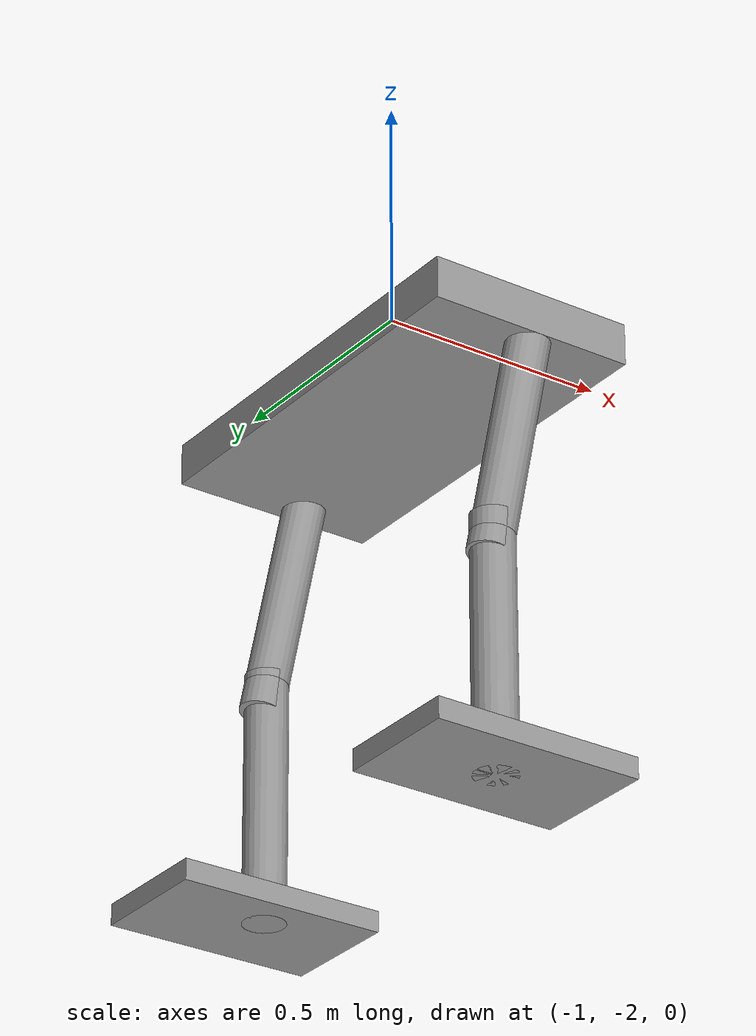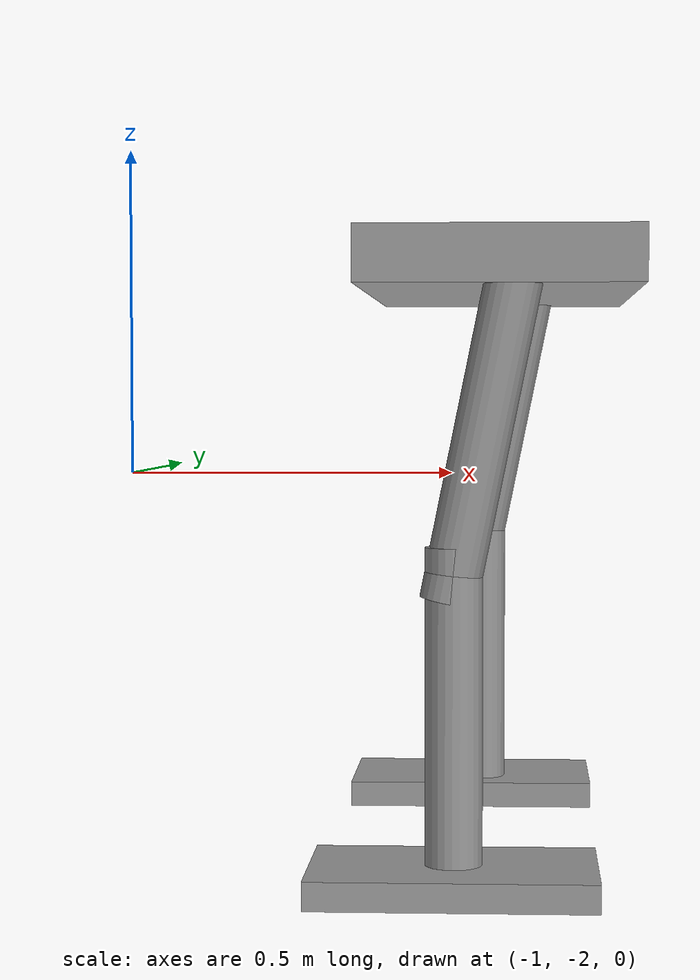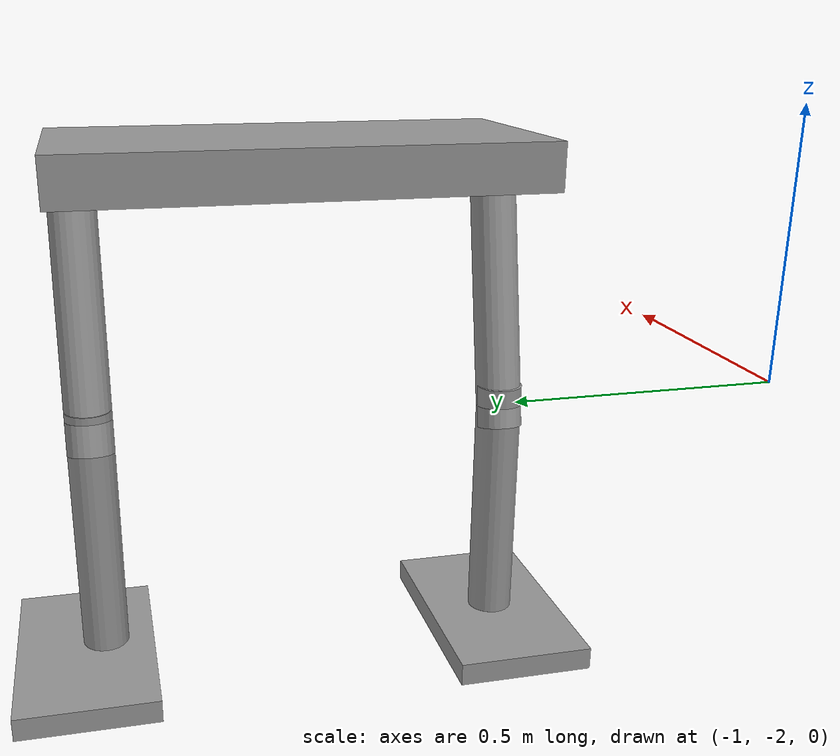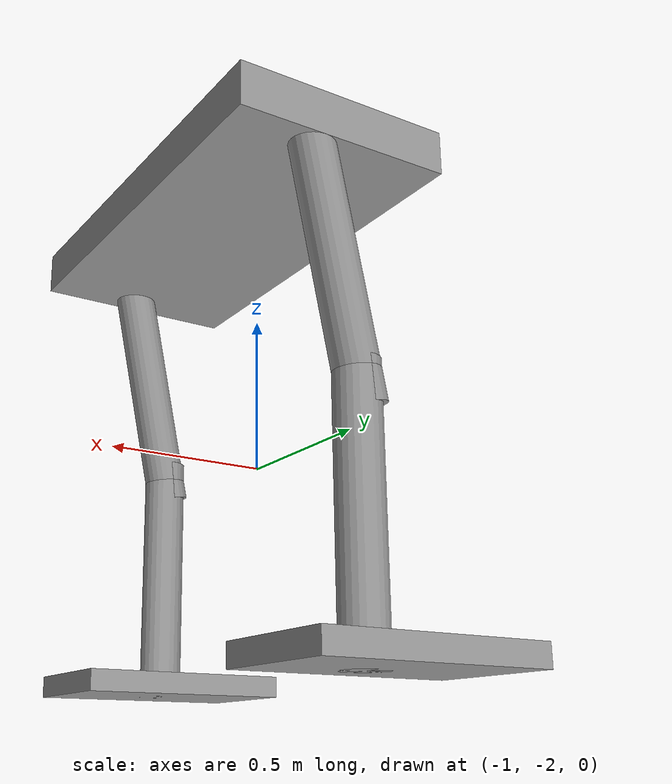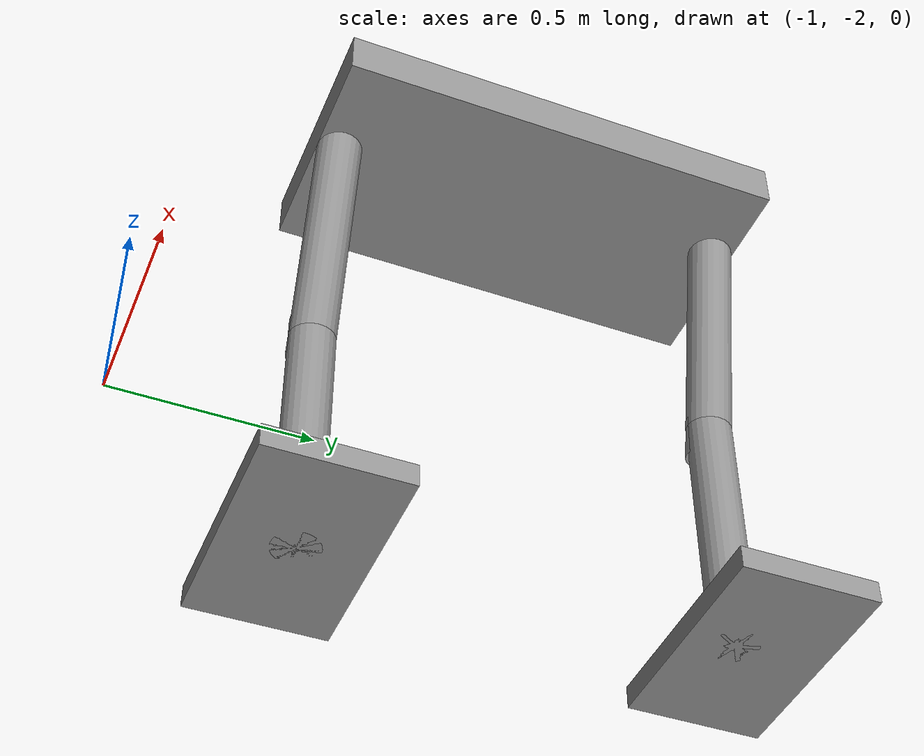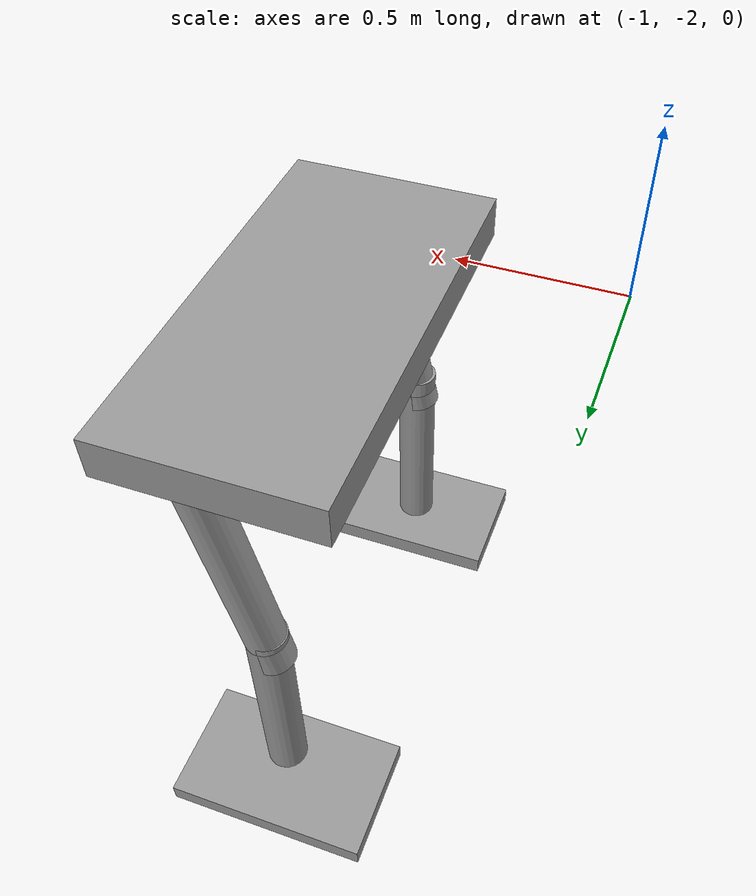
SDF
<?xml version='1.0'?>
<sdf version='1.6'>
  <model name='humanoid_robot'>
    <link name='link_0'>
      <pose frame=''>-0.429033 -1.21064 0.361062 0 -0 0</pose>
      <inertial>
        <mass>1</mass>
        <inertia>
          <ixx>0.166667</ixx>
          <ixy>0</ixy>
          <ixz>0</ixz>
          <iyy>0.166667</iyy>
          <iyz>0</iyz>
          <izz>0.166667</izz>
        </inertia>
        <pose frame=''>0 0 0 0 -0 0</pose>
      </inertial>
      <gravity>1</gravity>
      <self_collide>0</self_collide>
      <kinematic>0</kinematic>
      <visual name='visual'>
        <pose frame=''>0 0 0 0 -0 0</pose>
        <geometry>
          <box>
            <size>0.5 1 0.1</size>
          </box>
        </geometry>
        <material>
          <lighting>1</lighting>
          <script>
            <uri>file://media/materials/scripts/gazebo.material</uri>
            <name>Gazebo/Grey</name>
          </script>
          <shader type='pixel'>
            <normal_map>__default__</normal_map>
          </shader>
          <ambient>0.3 0.3 0.3 1</ambient>
          <diffuse>0.7 0.7 0.7 1</diffuse>
          <specular>0.01 0.01 0.01 1</specular>
          <emissive>0 0 0 1</emissive>
        </material>
        <transparency>0</transparency>
        <cast_shadows>1</cast_shadows>
      </visual>
      <collision name='collision'>
        <laser_retro>0</laser_retro>
        <max_contacts>10</max_contacts>
        <pose frame=''>0 0 0 0 -0 0</pose>
        <geometry>
          <box>
            <size>0.5 1 0.1</size>
          </box>
        </geometry>
        <surface>
          <friction>
            <ode>
              <mu>1</mu>
              <mu2>1</mu2>
              <fdir1>0 0 0</fdir1>
              <slip1>0</slip1>
              <slip2>0</slip2>
            </ode>
            <torsional>
              <coefficient>1</coefficient>
              <patch_radius>0</patch_radius>
              <surface_radius>0</surface_radius>
              <use_patch_radius>1</use_patch_radius>
              <ode>
                <slip>0</slip>
              </ode>
            </torsional>
          </friction>
          <bounce>
            <restitution_coefficient>0</restitution_coefficient>
            <threshold>1e+06</threshold>
          </bounce>
          <contact>
            <collide_without_contact>0</collide_without_contact>
            <collide_without_contact_bitmask>1</collide_without_contact_bitmask>
            <collide_bitmask>1</collide_bitmask>
            <ode>
              <soft_cfm>0</soft_cfm>
              <soft_erp>0.2</soft_erp>
              <kp>1e+13</kp>
              <kd>1</kd>
              <max_vel>0.01</max_vel>
              <min_depth>0</min_depth>
            </ode>
            <bullet>
              <split_impulse>1</split_impulse>
              <split_impulse_penetration_threshold>-0.01</split_impulse_penetration_threshold>
              <soft_cfm>0</soft_cfm>
              <soft_erp>0.2</soft_erp>
              <kp>1e+13</kp>
              <kd>1</kd>
            </bullet>
          </contact>
        </surface>
      </collision>
    </link>
    <link name='link_1'>
      <pose frame=''>-0.494032 -0.715644 -0.71443 0 -0 0</pose>
      <inertial>
        <mass>1</mass>
        <inertia>
          <ixx>0.166667</ixx>
          <ixy>0</ixy>
          <ixz>0</ixz>
          <iyy>0.166667</iyy>
          <iyz>0</iyz>
          <izz>0.166667</izz>
        </inertia>
        <pose frame=''>0 0 0 0 -0 0</pose>
      </inertial>
      <gravity>1</gravity>
      <self_collide>0</self_collide>
      <kinematic>0</kinematic>
      <visual name='visual'>
        <pose frame=''>0 0 0 0 -0 0</pose>
        <geometry>
          <box>
            <size>0.5 0.3 0.05</size>
          </box>
        </geometry>
        <material>
          <lighting>1</lighting>
          <script>
            <uri>file://media/materials/scripts/gazebo.material</uri>
            <name>Gazebo/Grey</name>
          </script>
          <shader type='pixel'>
            <normal_map>__default__</normal_map>
          </shader>
          <ambient>0.3 0.3 0.3 1</ambient>
          <diffuse>0.7 0.7 0.7 1</diffuse>
          <specular>0.01 0.01 0.01 1</specular>
          <emissive>0 0 0 1</emissive>
        </material>
        <transparency>0</transparency>
        <cast_shadows>1</cast_shadows>
      </visual>
      <collision name='collision'>
        <laser_retro>0</laser_retro>
        <max_contacts>10</max_contacts>
        <pose frame=''>0 0 0 0 -0 0</pose>
        <geometry>
          <box>
            <size>0.5 0.3 0.05</size>
          </box>
        </geometry>
        <surface>
          <friction>
            <ode>
              <mu>1</mu>
              <mu2>1</mu2>
              <fdir1>0 0 0</fdir1>
              <slip1>0</slip1>
              <slip2>0</slip2>
            </ode>
            <torsional>
              <coefficient>1</coefficient>
              <patch_radius>0</patch_radius>
              <surface_radius>0</surface_radius>
              <use_patch_radius>1</use_patch_radius>
              <ode>
                <slip>0</slip>
              </ode>
            </torsional>
          </friction>
          <bounce>
            <restitution_coefficient>0</restitution_coefficient>
            <threshold>1e+06</threshold>
          </bounce>
          <contact>
            <collide_without_contact>0</collide_without_contact>
            <collide_without_contact_bitmask>1</collide_without_contact_bitmask>
            <collide_bitmask>1</collide_bitmask>
            <ode>
              <soft_cfm>0</soft_cfm>
              <soft_erp>0.2</soft_erp>
              <kp>1e+13</kp>
              <kd>1</kd>
              <max_vel>0.01</max_vel>
              <min_depth>0</min_depth>
            </ode>
            <bullet>
              <split_impulse>1</split_impulse>
              <split_impulse_penetration_threshold>-0.01</split_impulse_penetration_threshold>
              <soft_cfm>0</soft_cfm>
              <soft_erp>0.2</soft_erp>
              <kp>1e+13</kp>
              <kd>1</kd>
            </bullet>
          </contact>
        </surface>
      </collision>
    </link>
    <link name='link_1_clone'>
      <pose frame=''>-0.50671 -1.66064 -0.71443 0 -0 0</pose>
      <inertial>
        <mass>1</mass>
        <inertia>
          <ixx>0.166667</ixx>
          <ixy>0</ixy>
          <ixz>0</ixz>
          <iyy>0.166667</iyy>
          <iyz>0</iyz>
          <izz>0.166667</izz>
        </inertia>
        <pose frame=''>0 0 0 0 -0 0</pose>
      </inertial>
      <self_collide>0</self_collide>
      <kinematic>0</kinematic>
      <visual name='visual'>
        <pose frame=''>0 0 0 0 -0 0</pose>
        <geometry>
          <box>
            <size>0.5 0.3 0.05</size>
          </box>
        </geometry>
        <material>
          <lighting>1</lighting>
          <script>
            <uri>file://media/materials/scripts/gazebo.material</uri>
            <name>Gazebo/Grey</name>
          </script>
          <shader type='pixel'>
            <normal_map>__default__</normal_map>
          </shader>
          <ambient>0.3 0.3 0.3 1</ambient>
          <diffuse>0.7 0.7 0.7 1</diffuse>
          <specular>0.01 0.01 0.01 1</specular>
          <emissive>0 0 0 1</emissive>
        </material>
        <transparency>0</transparency>
        <cast_shadows>1</cast_shadows>
      </visual>
      <collision name='collision'>
        <laser_retro>0</laser_retro>
        <max_contacts>10</max_contacts>
        <pose frame=''>0 0 0 0 -0 0</pose>
        <geometry>
          <box>
            <size>0.5 0.3 0.05</size>
          </box>
        </geometry>
        <surface>
          <friction>
            <ode>
              <mu>1</mu>
              <mu2>1</mu2>
              <fdir1>0 0 0</fdir1>
              <slip1>0</slip1>
              <slip2>0</slip2>
            </ode>
            <torsional>
              <coefficient>1</coefficient>
              <patch_radius>0</patch_radius>
              <surface_radius>0</surface_radius>
              <use_patch_radius>1</use_patch_radius>
              <ode>
                <slip>0</slip>
              </ode>
            </torsional>
          </friction>
          <bounce>
            <restitution_coefficient>0</restitution_coefficient>
            <threshold>1e+06</threshold>
          </bounce>
          <contact>
            <collide_without_contact>0</collide_without_contact>
            <collide_without_contact_bitmask>1</collide_without_contact_bitmask>
            <collide_bitmask>1</collide_bitmask>
            <ode>
              <soft_cfm>0</soft_cfm>
              <soft_erp>0.2</soft_erp>
              <kp>1e+13</kp>
              <kd>1</kd>
              <max_vel>0.01</max_vel>
              <min_depth>0</min_depth>
            </ode>
            <bullet>
              <split_impulse>1</split_impulse>
              <split_impulse_penetration_threshold>-0.01</split_impulse_penetration_threshold>
              <soft_cfm>0</soft_cfm>
              <soft_erp>0.2</soft_erp>
              <kp>1e+13</kp>
              <kd>1</kd>
            </bullet>
          </contact>
        </surface>
      </collision>
    </link>
    <link name='link_2'>
      <pose frame=''>-0.474033 -0.760644 -0.43943 0 -0 0</pose>
      <inertial>
        <mass>1</mass>
        <inertia>
          <ixx>0.145833</ixx>
          <ixy>0</ixy>
          <ixz>0</ixz>
          <iyy>0.145833</iyy>
          <iyz>0</iyz>
          <izz>0.125</izz>
        </inertia>
        <pose frame=''>0 0 0 0 -0 0</pose>
      </inertial>
      <gravity>1</gravity>
      <self_collide>0</self_collide>
      <kinematic>0</kinematic>
      <visual name='visual'>
        <pose frame=''>0 0 0 0 -0 0</pose>
        <geometry>
          <cylinder>
            <radius>0.05</radius>
            <length>0.6</length>
          </cylinder>
        </geometry>
        <material>
          <lighting>1</lighting>
          <script>
            <uri>file://media/materials/scripts/gazebo.material</uri>
            <name>Gazebo/Grey</name>
          </script>
          <shader type='pixel'>
            <normal_map>__default__</normal_map>
          </shader>
          <ambient>0.3 0.3 0.3 1</ambient>
          <diffuse>0.7 0.7 0.7 1</diffuse>
          <specular>0.01 0.01 0.01 1</specular>
          <emissive>0 0 0 1</emissive>
        </material>
        <transparency>0</transparency>
        <cast_shadows>1</cast_shadows>
      </visual>
      <collision name='collision'>
        <laser_retro>0</laser_retro>
        <max_contacts>10</max_contacts>
        <pose frame=''>0 0 0 0 -0 0</pose>
        <geometry>
          <cylinder>
            <radius>0.05</radius>
            <length>0.6</length>
          </cylinder>
        </geometry>
        <surface>
          <friction>
            <ode>
              <mu>1</mu>
              <mu2>1</mu2>
              <fdir1>0 0 0</fdir1>
              <slip1>0</slip1>
              <slip2>0</slip2>
            </ode>
            <torsional>
              <coefficient>1</coefficient>
              <patch_radius>0</patch_radius>
              <surface_radius>0</surface_radius>
              <use_patch_radius>1</use_patch_radius>
              <ode>
                <slip>0</slip>
              </ode>
            </torsional>
          </friction>
          <bounce>
            <restitution_coefficient>0</restitution_coefficient>
            <threshold>1e+06</threshold>
          </bounce>
          <contact>
            <collide_without_contact>0</collide_without_contact>
            <collide_without_contact_bitmask>1</collide_without_contact_bitmask>
            <collide_bitmask>1</collide_bitmask>
            <ode>
              <soft_cfm>0</soft_cfm>
              <soft_erp>0.2</soft_erp>
              <kp>1e+13</kp>
              <kd>1</kd>
              <max_vel>0.01</max_vel>
              <min_depth>0</min_depth>
            </ode>
            <bullet>
              <split_impulse>1</split_impulse>
              <split_impulse_penetration_threshold>-0.01</split_impulse_penetration_threshold>
              <soft_cfm>0</soft_cfm>
              <soft_erp>0.2</soft_erp>
              <kp>1e+13</kp>
              <kd>1</kd>
            </bullet>
          </contact>
        </surface>
      </collision>
    </link>
    <link name='link_2_clone'>
      <pose frame=''>-0.429033 -0.760644 0.061062 0 0.2 0</pose>
      <inertial>
        <mass>1</mass>
        <inertia>
          <ixx>0.145833</ixx>
          <ixy>0</ixy>
          <ixz>0</ixz>
          <iyy>0.145833</iyy>
          <iyz>0</iyz>
          <izz>0.125</izz>
        </inertia>
        <pose frame=''>0 0 0 0 -0 0</pose>
      </inertial>
      <self_collide>0</self_collide>
      <kinematic>0</kinematic>
      <visual name='visual'>
        <pose frame=''>0 0 0 0 -0 0</pose>
        <geometry>
          <cylinder>
            <radius>0.05</radius>
            <length>0.6</length>
          </cylinder>
        </geometry>
        <material>
          <lighting>1</lighting>
          <script>
            <uri>file://media/materials/scripts/gazebo.material</uri>
            <name>Gazebo/Grey</name>
          </script>
          <shader type='pixel'>
            <normal_map>__default__</normal_map>
          </shader>
          <ambient>0.3 0.3 0.3 1</ambient>
          <diffuse>0.7 0.7 0.7 1</diffuse>
          <specular>0.01 0.01 0.01 1</specular>
          <emissive>0 0 0 1</emissive>
        </material>
        <transparency>0</transparency>
        <cast_shadows>1</cast_shadows>
      </visual>
      <collision name='collision'>
        <laser_retro>0</laser_retro>
        <max_contacts>10</max_contacts>
        <pose frame=''>0 0 0 0 -0 0</pose>
        <geometry>
          <cylinder>
            <radius>0.05</radius>
            <length>0.6</length>
          </cylinder>
        </geometry>
        <surface>
          <friction>
            <ode>
              <mu>1</mu>
              <mu2>1</mu2>
              <fdir1>0 0 0</fdir1>
              <slip1>0</slip1>
              <slip2>0</slip2>
            </ode>
            <torsional>
              <coefficient>1</coefficient>
              <patch_radius>0</patch_radius>
              <surface_radius>0</surface_radius>
              <use_patch_radius>1</use_patch_radius>
              <ode>
                <slip>0</slip>
              </ode>
            </torsional>
          </friction>
          <bounce>
            <restitution_coefficient>0</restitution_coefficient>
            <threshold>1e+06</threshold>
          </bounce>
          <contact>
            <collide_without_contact>0</collide_without_contact>
            <collide_without_contact_bitmask>1</collide_without_contact_bitmask>
            <collide_bitmask>1</collide_bitmask>
            <ode>
              <soft_cfm>0</soft_cfm>
              <soft_erp>0.2</soft_erp>
              <kp>1e+13</kp>
              <kd>1</kd>
              <max_vel>0.01</max_vel>
              <min_depth>0</min_depth>
            </ode>
            <bullet>
              <split_impulse>1</split_impulse>
              <split_impulse_penetration_threshold>-0.01</split_impulse_penetration_threshold>
              <soft_cfm>0</soft_cfm>
              <soft_erp>0.2</soft_erp>
              <kp>1e+13</kp>
              <kd>1</kd>
            </bullet>
          </contact>
        </surface>
      </collision>
    </link>
    <link name='link_2_clone_0'>
      <pose frame=''>-0.50671 -1.66064 -0.43943 0 -0 0</pose>
      <inertial>
        <mass>1</mass>
        <inertia>
          <ixx>0.145833</ixx>
          <ixy>0</ixy>
          <ixz>0</ixz>
          <iyy>0.145833</iyy>
          <iyz>0</iyz>
          <izz>0.125</izz>
        </inertia>
        <pose frame=''>0 0 0 0 -0 0</pose>
      </inertial>
      <self_collide>0</self_collide>
      <kinematic>0</kinematic>
      <visual name='visual'>
        <pose frame=''>0 0 0 0 -0 0</pose>
        <geometry>
          <cylinder>
            <radius>0.05</radius>
            <length>0.6</length>
          </cylinder>
        </geometry>
        <material>
          <lighting>1</lighting>
          <script>
            <uri>file://media/materials/scripts/gazebo.material</uri>
            <name>Gazebo/Grey</name>
          </script>
          <shader type='pixel'>
            <normal_map>__default__</normal_map>
          </shader>
          <ambient>0.3 0.3 0.3 1</ambient>
          <diffuse>0.7 0.7 0.7 1</diffuse>
          <specular>0.01 0.01 0.01 1</specular>
          <emissive>0 0 0 1</emissive>
        </material>
        <transparency>0</transparency>
        <cast_shadows>1</cast_shadows>
      </visual>
      <collision name='collision'>
        <laser_retro>0</laser_retro>
        <max_contacts>10</max_contacts>
        <pose frame=''>0 0 0 0 -0 0</pose>
        <geometry>
          <cylinder>
            <radius>0.05</radius>
            <length>0.6</length>
          </cylinder>
        </geometry>
        <surface>
          <friction>
            <ode>
              <mu>1</mu>
              <mu2>1</mu2>
              <fdir1>0 0 0</fdir1>
              <slip1>0</slip1>
              <slip2>0</slip2>
            </ode>
            <torsional>
              <coefficient>1</coefficient>
              <patch_radius>0</patch_radius>
              <surface_radius>0</surface_radius>
              <use_patch_radius>1</use_patch_radius>
              <ode>
                <slip>0</slip>
              </ode>
            </torsional>
          </friction>
          <bounce>
            <restitution_coefficient>0</restitution_coefficient>
            <threshold>1e+06</threshold>
          </bounce>
          <contact>
            <collide_without_contact>0</collide_without_contact>
            <collide_without_contact_bitmask>1</collide_without_contact_bitmask>
            <collide_bitmask>1</collide_bitmask>
            <ode>
              <soft_cfm>0</soft_cfm>
              <soft_erp>0.2</soft_erp>
              <kp>1e+13</kp>
              <kd>1</kd>
              <max_vel>0.01</max_vel>
              <min_depth>0</min_depth>
            </ode>
            <bullet>
              <split_impulse>1</split_impulse>
              <split_impulse_penetration_threshold>-0.01</split_impulse_penetration_threshold>
              <soft_cfm>0</soft_cfm>
              <soft_erp>0.2</soft_erp>
              <kp>1e+13</kp>
              <kd>1</kd>
            </bullet>
          </contact>
        </surface>
      </collision>
    </link>
    <link name='link_2_clone_0_clone'>
      <pose frame=''>-0.456711 -1.66064 0.06057 0 0.2 0</pose>
      <inertial>
        <mass>1</mass>
        <inertia>
          <ixx>0.145833</ixx>
          <ixy>0</ixy>
          <ixz>0</ixz>
          <iyy>0.145833</iyy>
          <iyz>0</iyz>
          <izz>0.125</izz>
        </inertia>
        <pose frame=''>0 0 0 0 -0 0</pose>
      </inertial>
      <self_collide>0</self_collide>
      <kinematic>0</kinematic>
      <visual name='visual'>
        <pose frame=''>0 0 0 0 -0 0</pose>
        <geometry>
          <cylinder>
            <radius>0.05</radius>
            <length>0.6</length>
          </cylinder>
        </geometry>
        <material>
          <lighting>1</lighting>
          <script>
            <uri>file://media/materials/scripts/gazebo.material</uri>
            <name>Gazebo/Grey</name>
          </script>
          <shader type='pixel'>
            <normal_map>__default__</normal_map>
          </shader>
          <ambient>0.3 0.3 0.3 1</ambient>
          <diffuse>0.7 0.7 0.7 1</diffuse>
          <specular>0.01 0.01 0.01 1</specular>
          <emissive>0 0 0 1</emissive>
        </material>
        <transparency>0</transparency>
        <cast_shadows>1</cast_shadows>
      </visual>
      <collision name='collision'>
        <laser_retro>0</laser_retro>
        <max_contacts>10</max_contacts>
        <pose frame=''>0 0 0 0 -0 0</pose>
        <geometry>
          <cylinder>
            <radius>0.05</radius>
            <length>0.6</length>
          </cylinder>
        </geometry>
        <surface>
          <friction>
            <ode>
              <mu>1</mu>
              <mu2>1</mu2>
              <fdir1>0 0 0</fdir1>
              <slip1>0</slip1>
              <slip2>0</slip2>
            </ode>
            <torsional>
              <coefficient>1</coefficient>
              <patch_radius>0</patch_radius>
              <surface_radius>0</surface_radius>
              <use_patch_radius>1</use_patch_radius>
              <ode>
                <slip>0</slip>
              </ode>
            </torsional>
          </friction>
          <bounce>
            <restitution_coefficient>0</restitution_coefficient>
            <threshold>1e+06</threshold>
          </bounce>
          <contact>
            <collide_without_contact>0</collide_without_contact>
            <collide_without_contact_bitmask>1</collide_without_contact_bitmask>
            <collide_bitmask>1</collide_bitmask>
            <ode>
              <soft_cfm>0</soft_cfm>
              <soft_erp>0.2</soft_erp>
              <kp>1e+13</kp>
              <kd>1</kd>
              <max_vel>0.01</max_vel>
              <min_depth>0</min_depth>
            </ode>
            <bullet>
              <split_impulse>1</split_impulse>
              <split_impulse_penetration_threshold>-0.01</split_impulse_penetration_threshold>
              <soft_cfm>0</soft_cfm>
              <soft_erp>0.2</soft_erp>
              <kp>1e+13</kp>
              <kd>1</kd>
            </bullet>
          </contact>
        </surface>
      </collision>
    </link>
    <joint name='link_0_JOINT_8' type='revolute'>
      <parent>link_0</parent>
      <child>link_2_clone</child>
      <pose frame=''>0 0 0 0 -0 0</pose>
      <axis>
        <xyz>1 0 0</xyz>
        <use_parent_model_frame>0</use_parent_model_frame>
        <limit>
          <lower>-1.79769e+308</lower>
          <upper>1.79769e+308</upper>
          <effort>-1</effort>
          <velocity>-1</velocity>
        </limit>
        <dynamics>
          <spring_reference>0</spring_reference>
          <spring_stiffness>0</spring_stiffness>
          <damping>0</damping>
        </dynamics>
      </axis>
      <physics>
        <ode>
          <limit>
            <cfm>0</cfm>
            <erp>0.2</erp>
          </limit>
          <suspension>
            <cfm>0</cfm>
            <erp>0.2</erp>
          </suspension>
        </ode>
      </physics>
    </joint>
    <joint name='link_1_JOINT_0' type='revolute'>
      <parent>link_1</parent>
      <child>link_2</child>
      <pose frame=''>0 0 0 0 -0 0</pose>
      <axis>
        <xyz>-0 -0 -1</xyz>
        <use_parent_model_frame>0</use_parent_model_frame>
        <limit>
          <lower>-1.79769e+308</lower>
          <upper>1.79769e+308</upper>
          <effort>-1</effort>
          <velocity>-1</velocity>
        </limit>
        <dynamics>
          <spring_reference>0</spring_reference>
          <spring_stiffness>0</spring_stiffness>
          <damping>0</damping>
        </dynamics>
      </axis>
      <physics>
        <ode>
          <limit>
            <cfm>0</cfm>
            <erp>0.2</erp>
          </limit>
          <suspension>
            <cfm>0</cfm>
            <erp>0.2</erp>
          </suspension>
        </ode>
      </physics>
    </joint>
    <joint name='link_1_clone_JOINT_3' type='revolute'>
      <parent>link_1_clone</parent>
      <child>link_2_clone_0</child>
      <pose frame=''>0 0 0 0 -0 0</pose>
      <axis>
        <xyz>-0 -0 -1</xyz>
        <use_parent_model_frame>0</use_parent_model_frame>
        <limit>
          <lower>-1.79769e+308</lower>
          <upper>1.79769e+308</upper>
          <effort>-1</effort>
          <velocity>-1</velocity>
        </limit>
        <dynamics>
          <spring_reference>0</spring_reference>
          <spring_stiffness>0</spring_stiffness>
          <damping>0</damping>
        </dynamics>
      </axis>
      <physics>
        <ode>
          <limit>
            <cfm>0</cfm>
            <erp>0.2</erp>
          </limit>
          <suspension>
            <cfm>0</cfm>
            <erp>0.2</erp>
          </suspension>
        </ode>
      </physics>
    </joint>
    <joint name='link_2_JOINT_10' type='revolute'>
      <parent>link_2</parent>
      <child>link_1</child>
      <pose frame=''>0 0 0 0 -0 0</pose>
      <axis>
        <xyz>1 0 0</xyz>
        <use_parent_model_frame>0</use_parent_model_frame>
        <limit>
          <lower>-1.79769e+308</lower>
          <upper>1.79769e+308</upper>
          <effort>-1</effort>
          <velocity>-1</velocity>
        </limit>
        <dynamics>
          <spring_reference>0</spring_reference>
          <spring_stiffness>0</spring_stiffness>
          <damping>0</damping>
        </dynamics>
      </axis>
      <physics>
        <ode>
          <limit>
            <cfm>0</cfm>
            <erp>0.2</erp>
          </limit>
          <suspension>
            <cfm>0</cfm>
            <erp>0.2</erp>
          </suspension>
        </ode>
      </physics>
    </joint>
    <joint name='link_2_JOINT_2' type='revolute'>
      <parent>link_2</parent>
      <child>link_2_clone</child>
      <pose frame=''>0 0 0 0 -0 0</pose>
      <axis>
        <xyz>0 0 -1</xyz>
        <use_parent_model_frame>0</use_parent_model_frame>
        <limit>
          <lower>-1.79769e+308</lower>
          <upper>1.79769e+308</upper>
          <effort>-1</effort>
          <velocity>-1</velocity>
        </limit>
        <dynamics>
          <spring_reference>0</spring_reference>
          <spring_stiffness>0</spring_stiffness>
          <damping>0</damping>
          <friction>0</friction>
        </dynamics>
      </axis>
      <physics>
        <ode>
          <limit>
            <cfm>0</cfm>
            <erp>0.2</erp>
          </limit>
          <suspension>
            <cfm>0</cfm>
            <erp>0.2</erp>
          </suspension>
        </ode>
      </physics>
    </joint>
    <joint name='link_2_clone_0_JOINT_4' type='revolute'>
      <parent>link_2_clone_0</parent>
      <child>link_2_clone_0_clone</child>
      <pose frame=''>0 0 0 0 -0 0</pose>
      <axis>
        <xyz>-0 -0 -1</xyz>
        <use_parent_model_frame>0</use_parent_model_frame>
        <limit>
          <lower>-1.79769e+308</lower>
          <upper>1.79769e+308</upper>
          <effort>-1</effort>
          <velocity>-1</velocity>
        </limit>
        <dynamics>
          <spring_reference>0</spring_reference>
          <spring_stiffness>0</spring_stiffness>
          <damping>0</damping>
        </dynamics>
      </axis>
      <physics>
        <ode>
          <limit>
            <cfm>0</cfm>
            <erp>0.2</erp>
          </limit>
          <suspension>
            <cfm>0</cfm>
            <erp>0.2</erp>
          </suspension>
        </ode>
      </physics>
    </joint>
    <joint name='link_2_clone_0_clone_JOINT_5' type='revolute'>
      <parent>link_2_clone_0_clone</parent>
      <child>link_0</child>
      <pose frame=''>0 0 0 0 -0 0</pose>
      <axis>
        <xyz>-0 -0 -1</xyz>
        <use_parent_model_frame>0</use_parent_model_frame>
        <limit>
          <lower>-1.79769e+308</lower>
          <upper>1.79769e+308</upper>
          <effort>-1</effort>
          <velocity>-1</velocity>
        </limit>
        <dynamics>
          <spring_reference>0</spring_reference>
          <spring_stiffness>0</spring_stiffness>
          <damping>0</damping>
        </dynamics>
      </axis>
      <physics>
        <ode>
          <limit>
            <cfm>0</cfm>
            <erp>0.2</erp>
          </limit>
          <suspension>
            <cfm>0</cfm>
            <erp>0.2</erp>
          </suspension>
        </ode>
      </physics>
    </joint>
    <joint name='link_2_clone_JOINT_9' type='revolute'>
      <parent>link_2_clone</parent>
      <child>link_2</child>
      <pose frame=''>0 0 0 0 -0 0</pose>
      <axis>
        <xyz>1 0 0</xyz>
        <use_parent_model_frame>0</use_parent_model_frame>
        <limit>
          <lower>-1.79769e+308</lower>
          <upper>1.79769e+308</upper>
          <effort>-1</effort>
          <velocity>-1</velocity>
        </limit>
        <dynamics>
          <spring_reference>0</spring_reference>
          <spring_stiffness>0</spring_stiffness>
          <damping>0</damping>
        </dynamics>
      </axis>
      <physics>
        <ode>
          <limit>
            <cfm>0</cfm>
            <erp>0.2</erp>
          </limit>
          <suspension>
            <cfm>0</cfm>
            <erp>0.2</erp>
          </suspension>
        </ode>
      </physics>
    </joint>
    <static>0</static>
    <allow_auto_disable>1</allow_auto_disable>
  </model>
</sdf>
